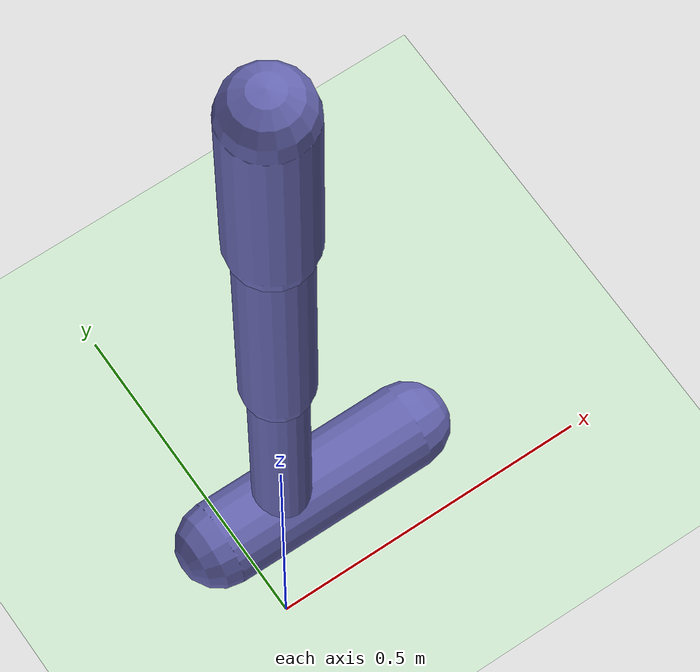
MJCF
<mujoco model="walker2d">
  <compiler angle="degree" inertiafromgeom="true"/>
  <option timestep="0.002" integrator="RK4"/>

  <default>
    <joint limited="true" damping="0.5" armature="0.01"/>
    <geom contype="1" conaffinity="1" condim="3" friction="0.9 0.5 0.5" rgba="0.4 0.4 0.7 1"/>
  </default>

  <worldbody>
    <light diffuse="0.8 0.8 0.8" pos="0 0 3" dir="0 0 -1"/>
    <geom type="plane" size="40 40 0.1" rgba="0.8 0.9 0.8 1"/>

    <body name="torso" pos="0 0 1.3">
      <joint name="rootx" type="slide" axis="1 0 0" limited="false"/>
      <joint name="rootz" type="slide" axis="0 0 1" limited="false"/>
      <joint name="rooty" type="hinge" axis="0 1 0" limited="false"/>
      <geom type="capsule" fromto="0 0 -0.1  0 0 0.2" size="0.06" mass="3.5"/>

      <!-- Right leg -->
      <body name="thigh" pos="0 0 -0.1">
        <joint name="thigh_joint" type="hinge" axis="0 -1 0" range="-150 0"/>
        <geom type="capsule" fromto="0 0 0  0 0 -0.4" size="0.05" mass="4.0"/>
        <body name="leg" pos="0 0 -0.4">
          <joint name="leg_joint" type="hinge" axis="0 -1 0" range="-150 0"/>
          <geom type="capsule" fromto="0 0 0  0 0 -0.4" size="0.04" mass="2.7"/>
          <body name="foot" pos="0 0 -0.4">
            <joint name="foot_joint" type="hinge" axis="0 -1 0" range="-45 45"/>
            <geom type="capsule" fromto="-0.1 0 0  0.2 0 0" size="0.06" mass="3.5"/>
          </body>
        </body>
      </body>

      <!-- Left leg -->
      <body name="thigh_left" pos="0 0 -0.1">
        <joint name="thigh_left_joint" type="hinge" axis="0 -1 0" range="-150 0"/>
        <geom type="capsule" fromto="0 0 0  0 0 -0.4" size="0.05" mass="4.0" rgba="0.5 0.5 0.8 1"/>
        <body name="leg_left" pos="0 0 -0.4">
          <joint name="leg_left_joint" type="hinge" axis="0 -1 0" range="-150 0"/>
          <geom type="capsule" fromto="0 0 0  0 0 -0.4" size="0.04" mass="2.7" rgba="0.5 0.5 0.8 1"/>
          <body name="foot_left" pos="0 0 -0.4">
            <joint name="foot_left_joint" type="hinge" axis="0 -1 0" range="-45 45"/>
            <geom type="capsule" fromto="-0.1 0 0  0.2 0 0" size="0.06" mass="3.5" rgba="0.5 0.5 0.8 1"/>
          </body>
        </body>
      </body>
    </body>
  </worldbody>

  <actuator>
    <motor joint="thigh_joint" gear="100" ctrlrange="-1 1" ctrllimited="true"/>
    <motor joint="leg_joint" gear="100" ctrlrange="-1 1" ctrllimited="true"/>
    <motor joint="foot_joint" gear="100" ctrlrange="-1 1" ctrllimited="true"/>
    <motor joint="thigh_left_joint" gear="100" ctrlrange="-1 1" ctrllimited="true"/>
    <motor joint="leg_left_joint" gear="100" ctrlrange="-1 1" ctrllimited="true"/>
    <motor joint="foot_left_joint" gear="100" ctrlrange="-1 1" ctrllimited="true"/>
  </actuator>
</mujoco>
